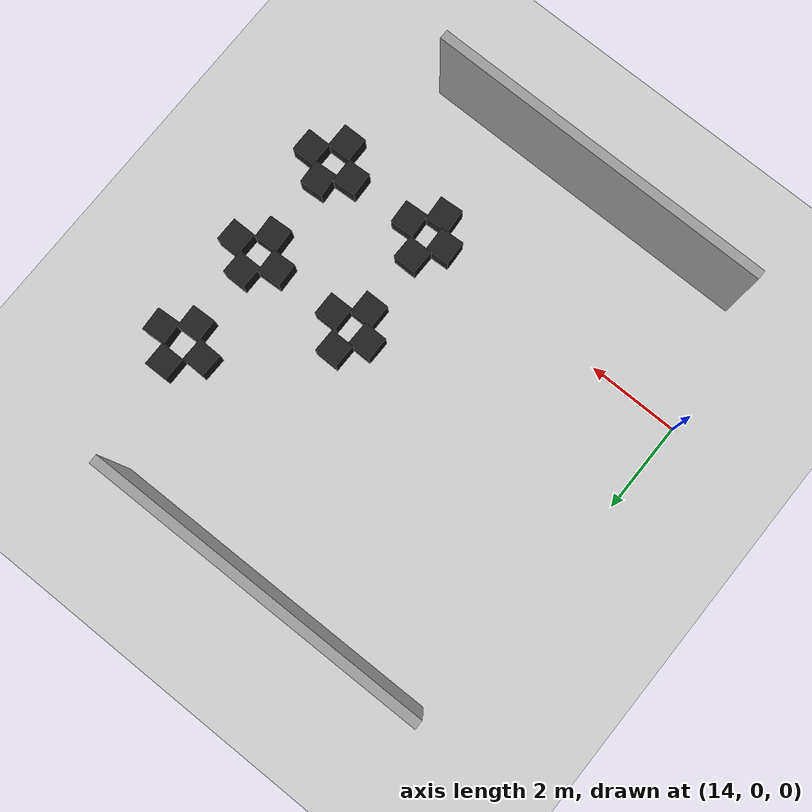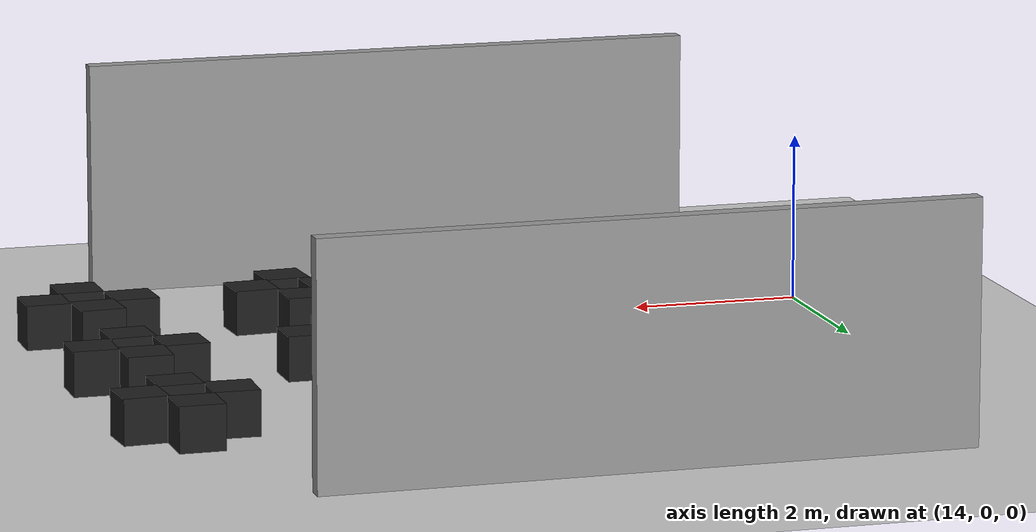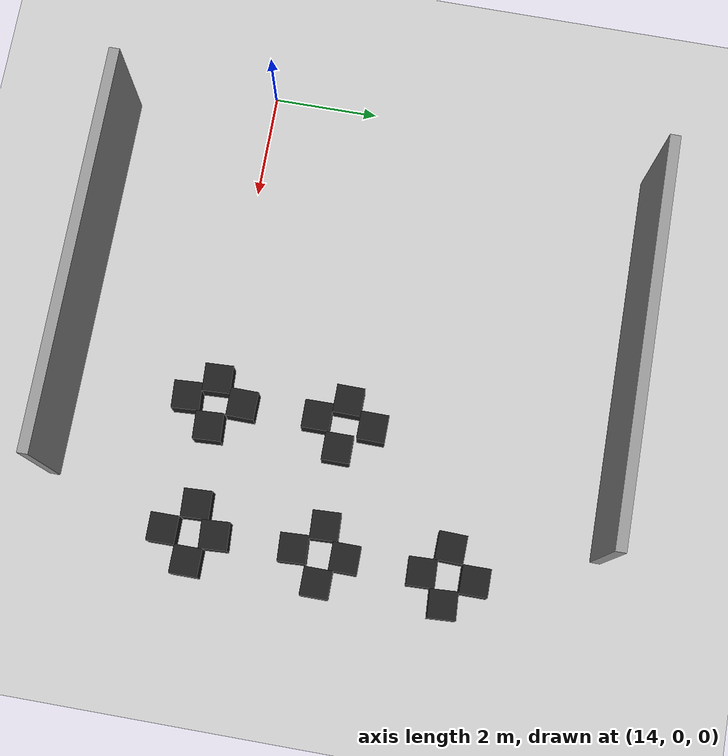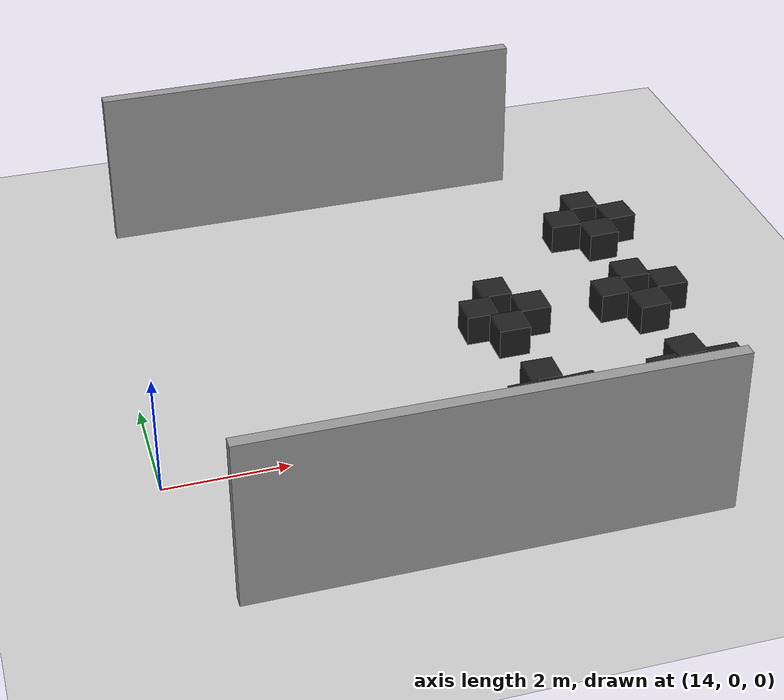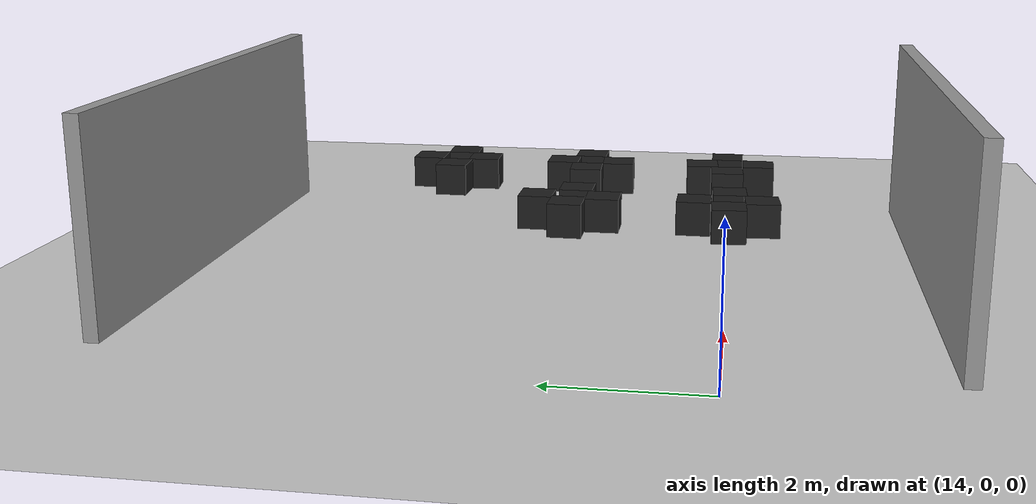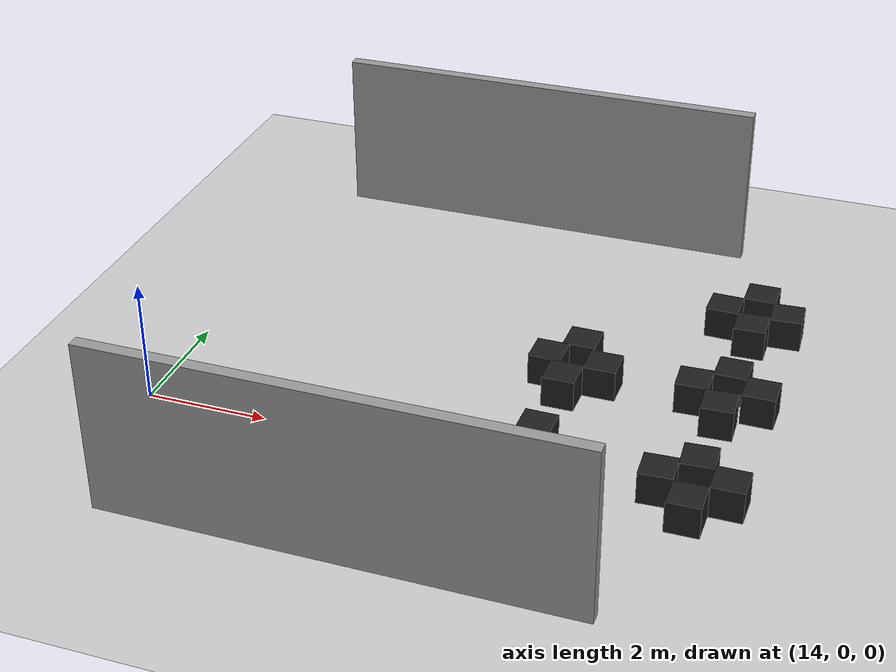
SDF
<sdf version="1.6">
 <world name="default">
  <model name="grey_wall">
   <static>1</static>
   <link name="link">
    <pose>0 0 1.4 0 -0 0</pose>
    <collision name="collision"><geometry><box><size>7.5 0.2 2.8</size></box></geometry></collision>
    <visual name="visual">
     <cast_shadows>0</cast_shadows>
     <geometry><box><size>7.5 0.2 2.8</size></box></geometry>
     <material>
      <script>
       <uri>model://grey_wall/materials/scripts</uri>
       <uri>model://grey_wall/materials/textures</uri>
       <name>vrc/grey_wall</name>
      </script>
     </material>
    </visual>
   </link>
   <pose>18.2315 7.51175 0 0 -0 0.005635</pose>
  </model>
  <model name="grey_wall_clone">
   <static>1</static>
   <link name="link">
    <pose>0 0 1.4 0 -0 0</pose>
    <collision name="collision"><geometry><box><size>7.5 0.2 2.8</size></box></geometry></collision>
    <visual name="visual">
     <cast_shadows>0</cast_shadows>
     <geometry><box><size>7.5 0.2 2.8</size></box></geometry>
     <material>
      <script>
       <uri>model://grey_wall/materials/scripts</uri>
       <uri>model://grey_wall/materials/textures</uri>
       <name>vrc/grey_wall</name>
      </script>
     </material>
    </visual>
   </link>
   <pose>18.3523 -2.72946 0 0 -0 0</pose>
  </model>
  <model name="unit_box_0_clone_13">
   <link name="link">
    <inertial>
     <mass>1</mass>
     <inertia>
      <ixx>0.166667</ixx>
      <ixy>0</ixy>
      <ixz>0</ixz>
      <iyy>0.166667</iyy>
      <iyz>0</iyz>
      <izz>0.166667</izz>
     </inertia>
    </inertial>
    <visual name="visual">
     <geometry><box><size>0.530101 0.530101 0.530101</size></box></geometry>
     <material>
      <script><name>Gazebo/FlatBlack</name><uri>file://media/materials/scripts/gazebo.material</uri></script>
      <shader type="pixel"><normal_map>__default__</normal_map></shader>
      <ambient>0.1 0.1 0.1 1</ambient>
      <diffuse>0.1 0.1 0.1 1</diffuse>
      <specular>0.01 0.01 0.01 1</specular>
      <emissive>0 0 0 1</emissive>
     </material>
    </visual>
    <collision name="collision">
     <geometry><box><size>0.530101 0.530101 0.530101</size></box></geometry>
     <surface>
      <friction>
       <ode><mu>1</mu><mu2>1</mu2><fdir1>0 0 0</fdir1><slip1>0</slip1><slip2>0</slip2></ode>
       <torsional>
        <coefficient>1</coefficient>
        <patch_radius>0</patch_radius>
        <surface_radius>0</surface_radius>
        <use_patch_radius>1</use_patch_radius>
        <ode><slip>0</slip></ode>
       </torsional>
      </friction>
      <bounce><restitution_coefficient>0</restitution_coefficient><threshold>1e+06</threshold></bounce>
      <contact>
       <collide_without_contact>0</collide_without_contact>
       <collide_without_contact_bitmask>1</collide_without_contact_bitmask>
       <collide_bitmask>1</collide_bitmask>
       <ode>
        <soft_cfm>0</soft_cfm>
        <soft_erp>0.2</soft_erp>
        <kp>1e+13</kp>
        <kd>1</kd>
        <max_vel>0.01</max_vel>
        <min_depth>0</min_depth>
       </ode>
       <bullet>
        <split_impulse>1</split_impulse>
        <split_impulse_penetration_threshold>-0.01</split_impulse_penetration_threshold>
        <soft_cfm>0</soft_cfm>
        <soft_erp>0.2</soft_erp>
        <kp>1e+13</kp>
        <kd>1</kd>
       </bullet>
      </contact>
     </surface>
    </collision>
   </link>
   <static>0</static>
   <pose>22.2071 4.82879 0.314108 9e-06 9e-06 -0.022856</pose>
  </model>
  <model name="unit_box_0_clone_22_clone_14">
   <link name="link">
    <inertial>
     <mass>1</mass>
     <inertia>
      <ixx>0.166667</ixx>
      <ixy>0</ixy>
      <ixz>0</ixz>
      <iyy>0.166667</iyy>
      <iyz>0</iyz>
      <izz>0.166667</izz>
     </inertia>
    </inertial>
    <visual name="visual">
     <geometry><box><size>0.530101 0.530101 0.530101</size></box></geometry>
     <material>
      <script><name>Gazebo/FlatBlack</name><uri>file://media/materials/scripts/gazebo.material</uri></script>
      <shader type="pixel"><normal_map>__default__</normal_map></shader>
      <ambient>0.1 0.1 0.1 1</ambient>
      <diffuse>0.1 0.1 0.1 1</diffuse>
      <specular>0.01 0.01 0.01 1</specular>
      <emissive>0 0 0 1</emissive>
     </material>
    </visual>
    <collision name="collision">
     <geometry><box><size>0.530101 0.530101 0.530101</size></box></geometry>
     <surface>
      <friction>
       <ode><mu>1</mu><mu2>1</mu2><fdir1>0 0 0</fdir1><slip1>0</slip1><slip2>0</slip2></ode>
       <torsional>
        <coefficient>1</coefficient>
        <patch_radius>0</patch_radius>
        <surface_radius>0</surface_radius>
        <use_patch_radius>1</use_patch_radius>
        <ode><slip>0</slip></ode>
       </torsional>
      </friction>
      <bounce><restitution_coefficient>0</restitution_coefficient><threshold>1e+06</threshold></bounce>
      <contact>
       <collide_without_contact>0</collide_without_contact>
       <collide_without_contact_bitmask>1</collide_without_contact_bitmask>
       <collide_bitmask>1</collide_bitmask>
       <ode>
        <soft_cfm>0</soft_cfm>
        <soft_erp>0.2</soft_erp>
        <kp>1e+13</kp>
        <kd>1</kd>
        <max_vel>0.01</max_vel>
        <min_depth>0</min_depth>
       </ode>
       <bullet>
        <split_impulse>1</split_impulse>
        <split_impulse_penetration_threshold>-0.01</split_impulse_penetration_threshold>
        <soft_cfm>0</soft_cfm>
        <soft_erp>0.2</soft_erp>
        <kp>1e+13</kp>
        <kd>1</kd>
       </bullet>
      </contact>
     </surface>
    </collision>
   </link>
   <static>0</static>
   <pose>22.7347 5.35425 0.314107 -8e-06 -8e-06 0.004781</pose>
  </model>
  <model name="unit_box_0_clone_22_clone_23">
   <link name="link">
    <inertial>
     <mass>1</mass>
     <inertia>
      <ixx>0.166667</ixx>
      <ixy>0</ixy>
      <ixz>0</ixz>
      <iyy>0.166667</iyy>
      <iyz>0</iyz>
      <izz>0.166667</izz>
     </inertia>
    </inertial>
    <visual name="visual">
     <geometry><box><size>0.530101 0.530101 0.530101</size></box></geometry>
     <material>
      <script><name>Gazebo/FlatBlack</name><uri>file://media/materials/scripts/gazebo.material</uri></script>
      <shader type="pixel"><normal_map>__default__</normal_map></shader>
      <ambient>0.1 0.1 0.1 1</ambient>
      <diffuse>0.1 0.1 0.1 1</diffuse>
      <specular>0.01 0.01 0.01 1</specular>
      <emissive>0 0 0 1</emissive>
     </material>
    </visual>
    <collision name="collision">
     <geometry><box><size>0.530101 0.530101 0.530101</size></box></geometry>
     <surface>
      <friction>
       <ode><mu>1</mu><mu2>1</mu2><fdir1>0 0 0</fdir1><slip1>0</slip1><slip2>0</slip2></ode>
       <torsional>
        <coefficient>1</coefficient>
        <patch_radius>0</patch_radius>
        <surface_radius>0</surface_radius>
        <use_patch_radius>1</use_patch_radius>
        <ode><slip>0</slip></ode>
       </torsional>
      </friction>
      <bounce><restitution_coefficient>0</restitution_coefficient><threshold>1e+06</threshold></bounce>
      <contact>
       <collide_without_contact>0</collide_without_contact>
       <collide_without_contact_bitmask>1</collide_without_contact_bitmask>
       <collide_bitmask>1</collide_bitmask>
       <ode>
        <soft_cfm>0</soft_cfm>
        <soft_erp>0.2</soft_erp>
        <kp>1e+13</kp>
        <kd>1</kd>
        <max_vel>0.01</max_vel>
        <min_depth>0</min_depth>
       </ode>
       <bullet>
        <split_impulse>1</split_impulse>
        <split_impulse_penetration_threshold>-0.01</split_impulse_penetration_threshold>
        <soft_cfm>0</soft_cfm>
        <soft_erp>0.2</soft_erp>
        <kp>1e+13</kp>
        <kd>1</kd>
       </bullet>
      </contact>
     </surface>
    </collision>
   </link>
   <static>0</static>
   <pose>22.7419 4.37024 0.314108 9e-06 8e-06 0.035627</pose>
  </model>
  <model name="unit_box_0_clone_22_clone_24">
   <link name="link">
    <inertial>
     <mass>1</mass>
     <inertia>
      <ixx>0.166667</ixx>
      <ixy>0</ixy>
      <ixz>0</ixz>
      <iyy>0.166667</iyy>
      <iyz>0</iyz>
      <izz>0.166667</izz>
     </inertia>
    </inertial>
    <visual name="visual">
     <geometry><box><size>0.530101 0.530101 0.530101</size></box></geometry>
     <material>
      <script><name>Gazebo/FlatBlack</name><uri>file://media/materials/scripts/gazebo.material</uri></script>
      <shader type="pixel"><normal_map>__default__</normal_map></shader>
      <ambient>0.1 0.1 0.1 1</ambient>
      <diffuse>0.1 0.1 0.1 1</diffuse>
      <specular>0.01 0.01 0.01 1</specular>
      <emissive>0 0 0 1</emissive>
     </material>
    </visual>
    <collision name="collision">
     <geometry><box><size>0.530101 0.530101 0.530101</size></box></geometry>
     <surface>
      <friction>
       <ode><mu>1</mu><mu2>1</mu2><fdir1>0 0 0</fdir1><slip1>0</slip1><slip2>0</slip2></ode>
       <torsional>
        <coefficient>1</coefficient>
        <patch_radius>0</patch_radius>
        <surface_radius>0</surface_radius>
        <use_patch_radius>1</use_patch_radius>
        <ode><slip>0</slip></ode>
       </torsional>
      </friction>
      <bounce><restitution_coefficient>0</restitution_coefficient><threshold>1e+06</threshold></bounce>
      <contact>
       <collide_without_contact>0</collide_without_contact>
       <collide_without_contact_bitmask>1</collide_without_contact_bitmask>
       <collide_bitmask>1</collide_bitmask>
       <ode>
        <soft_cfm>0</soft_cfm>
        <soft_erp>0.2</soft_erp>
        <kp>1e+13</kp>
        <kd>1</kd>
        <max_vel>0.01</max_vel>
        <min_depth>0</min_depth>
       </ode>
       <bullet>
        <split_impulse>1</split_impulse>
        <split_impulse_penetration_threshold>-0.01</split_impulse_penetration_threshold>
        <soft_cfm>0</soft_cfm>
        <soft_erp>0.2</soft_erp>
        <kp>1e+13</kp>
        <kd>1</kd>
       </bullet>
      </contact>
     </surface>
    </collision>
   </link>
   <static>0</static>
   <pose>23.2512 4.83992 0.314108 -7e-06 -8e-06 0.059855</pose>
  </model>
  <model name="unit_box_0_clone_10">
   <link name="link">
    <inertial>
     <mass>1</mass>
     <inertia>
      <ixx>0.166667</ixx>
      <ixy>0</ixy>
      <ixz>0</ixz>
      <iyy>0.166667</iyy>
      <iyz>0</iyz>
      <izz>0.166667</izz>
     </inertia>
    </inertial>
    <visual name="visual">
     <geometry><box><size>0.530101 0.530101 0.530101</size></box></geometry>
     <material>
      <script><name>Gazebo/FlatBlack</name><uri>file://media/materials/scripts/gazebo.material</uri></script>
      <shader type="pixel"><normal_map>__default__</normal_map></shader>
      <ambient>0.1 0.1 0.1 1</ambient>
      <diffuse>0.1 0.1 0.1 1</diffuse>
      <specular>0.01 0.01 0.01 1</specular>
      <emissive>0 0 0 1</emissive>
     </material>
    </visual>
    <collision name="collision">
     <geometry><box><size>0.530101 0.530101 0.530101</size></box></geometry>
     <surface>
      <friction>
       <ode><mu>1</mu><mu2>1</mu2><fdir1>0 0 0</fdir1><slip1>0</slip1><slip2>0</slip2></ode>
       <torsional>
        <coefficient>1</coefficient>
        <patch_radius>0</patch_radius>
        <surface_radius>0</surface_radius>
        <use_patch_radius>1</use_patch_radius>
        <ode><slip>0</slip></ode>
       </torsional>
      </friction>
      <bounce><restitution_coefficient>0</restitution_coefficient><threshold>1e+06</threshold></bounce>
      <contact>
       <collide_without_contact>0</collide_without_contact>
       <collide_without_contact_bitmask>1</collide_without_contact_bitmask>
       <collide_bitmask>1</collide_bitmask>
       <ode>
        <soft_cfm>0</soft_cfm>
        <soft_erp>0.2</soft_erp>
        <kp>1e+13</kp>
        <kd>1</kd>
        <max_vel>0.01</max_vel>
        <min_depth>0</min_depth>
       </ode>
       <bullet>
        <split_impulse>1</split_impulse>
        <split_impulse_penetration_threshold>-0.01</split_impulse_penetration_threshold>
        <soft_cfm>0</soft_cfm>
        <soft_erp>0.2</soft_erp>
        <kp>1e+13</kp>
        <kd>1</kd>
       </bullet>
      </contact>
     </surface>
    </collision>
   </link>
   <static>0</static>
   <pose>20.2244 1.97189 0.314109 9e-06 6e-06 0.004585</pose>
  </model>
  <model name="unit_box_0_clone_22_clone_4">
   <link name="link">
    <inertial>
     <mass>1</mass>
     <inertia>
      <ixx>0.166667</ixx>
      <ixy>0</ixy>
      <ixz>0</ixz>
      <iyy>0.166667</iyy>
      <iyz>0</iyz>
      <izz>0.166667</izz>
     </inertia>
    </inertial>
    <visual name="visual">
     <geometry><box><size>0.530101 0.530101 0.530101</size></box></geometry>
     <material>
      <script><name>Gazebo/FlatBlack</name><uri>file://media/materials/scripts/gazebo.material</uri></script>
      <shader type="pixel"><normal_map>__default__</normal_map></shader>
      <ambient>0.1 0.1 0.1 1</ambient>
      <diffuse>0.1 0.1 0.1 1</diffuse>
      <specular>0.01 0.01 0.01 1</specular>
      <emissive>0 0 0 1</emissive>
     </material>
    </visual>
    <collision name="collision">
     <geometry><box><size>0.530101 0.530101 0.530101</size></box></geometry>
     <surface>
      <friction>
       <ode><mu>1</mu><mu2>1</mu2><fdir1>0 0 0</fdir1><slip1>0</slip1><slip2>0</slip2></ode>
       <torsional>
        <coefficient>1</coefficient>
        <patch_radius>0</patch_radius>
        <surface_radius>0</surface_radius>
        <use_patch_radius>1</use_patch_radius>
        <ode><slip>0</slip></ode>
       </torsional>
      </friction>
      <bounce><restitution_coefficient>0</restitution_coefficient><threshold>1e+06</threshold></bounce>
      <contact>
       <collide_without_contact>0</collide_without_contact>
       <collide_without_contact_bitmask>1</collide_without_contact_bitmask>
       <collide_bitmask>1</collide_bitmask>
       <ode>
        <soft_cfm>0</soft_cfm>
        <soft_erp>0.2</soft_erp>
        <kp>1e+13</kp>
        <kd>1</kd>
        <max_vel>0.01</max_vel>
        <min_depth>0</min_depth>
       </ode>
       <bullet>
        <split_impulse>1</split_impulse>
        <split_impulse_penetration_threshold>-0.01</split_impulse_penetration_threshold>
        <soft_cfm>0</soft_cfm>
        <soft_erp>0.2</soft_erp>
        <kp>1e+13</kp>
        <kd>1</kd>
       </bullet>
      </contact>
     </surface>
    </collision>
   </link>
   <static>0</static>
   <pose>19.8425 2.50381 0.314111 -1e-05 4e-06 -0.008553</pose>
  </model>
  <model name="unit_box_0_clone_28">
   <link name="link">
    <inertial>
     <mass>1</mass>
     <inertia>
      <ixx>0.166667</ixx>
      <ixy>0</ixy>
      <ixz>0</ixz>
      <iyy>0.166667</iyy>
      <iyz>0</iyz>
      <izz>0.166667</izz>
     </inertia>
    </inertial>
    <visual name="visual">
     <geometry><box><size>0.530101 0.530101 0.530101</size></box></geometry>
     <material>
      <script><name>Gazebo/FlatBlack</name><uri>file://media/materials/scripts/gazebo.material</uri></script>
      <shader type="pixel"><normal_map>__default__</normal_map></shader>
      <ambient>0.1 0.1 0.1 1</ambient>
      <diffuse>0.1 0.1 0.1 1</diffuse>
      <specular>0.01 0.01 0.01 1</specular>
      <emissive>0 0 0 1</emissive>
     </material>
    </visual>
    <collision name="collision">
     <geometry><box><size>0.530101 0.530101 0.530101</size></box></geometry>
     <surface>
      <friction>
       <ode><mu>1</mu><mu2>1</mu2><fdir1>0 0 0</fdir1><slip1>0</slip1><slip2>0</slip2></ode>
       <torsional>
        <coefficient>1</coefficient>
        <patch_radius>0</patch_radius>
        <surface_radius>0</surface_radius>
        <use_patch_radius>1</use_patch_radius>
        <ode><slip>0</slip></ode>
       </torsional>
      </friction>
      <bounce><restitution_coefficient>0</restitution_coefficient><threshold>1e+06</threshold></bounce>
      <contact>
       <collide_without_contact>0</collide_without_contact>
       <collide_without_contact_bitmask>1</collide_without_contact_bitmask>
       <collide_bitmask>1</collide_bitmask>
       <ode>
        <soft_cfm>0</soft_cfm>
        <soft_erp>0.2</soft_erp>
        <kp>1e+13</kp>
        <kd>1</kd>
        <max_vel>0.01</max_vel>
        <min_depth>0</min_depth>
       </ode>
       <bullet>
        <split_impulse>1</split_impulse>
        <split_impulse_penetration_threshold>-0.01</split_impulse_penetration_threshold>
        <soft_cfm>0</soft_cfm>
        <soft_erp>0.2</soft_erp>
        <kp>1e+13</kp>
        <kd>1</kd>
       </bullet>
      </contact>
     </surface>
    </collision>
   </link>
   <static>0</static>
   <pose>20.2645 3.03053 0.314109 -9e-06 6e-06 -0.008598</pose>
  </model>
  <model name="unit_box_0_clone_22_clone_15_clone_6">
   <link name="link">
    <inertial>
     <mass>1</mass>
     <inertia>
      <ixx>0.166667</ixx>
      <ixy>0</ixy>
      <ixz>0</ixz>
      <iyy>0.166667</iyy>
      <iyz>0</iyz>
      <izz>0.166667</izz>
     </inertia>
    </inertial>
    <visual name="visual">
     <geometry><box><size>0.530101 0.530101 0.530101</size></box></geometry>
     <material>
      <script><name>Gazebo/FlatBlack</name><uri>file://media/materials/scripts/gazebo.material</uri></script>
      <shader type="pixel"><normal_map>__default__</normal_map></shader>
      <ambient>0.1 0.1 0.1 1</ambient>
      <diffuse>0.1 0.1 0.1 1</diffuse>
      <specular>0.01 0.01 0.01 1</specular>
      <emissive>0 0 0 1</emissive>
     </material>
    </visual>
    <collision name="collision">
     <geometry><box><size>0.530101 0.530101 0.530101</size></box></geometry>
     <surface>
      <friction>
       <ode><mu>1</mu><mu2>1</mu2><fdir1>0 0 0</fdir1><slip1>0</slip1><slip2>0</slip2></ode>
       <torsional>
        <coefficient>1</coefficient>
        <patch_radius>0</patch_radius>
        <surface_radius>0</surface_radius>
        <use_patch_radius>1</use_patch_radius>
        <ode><slip>0</slip></ode>
       </torsional>
      </friction>
      <bounce><restitution_coefficient>0</restitution_coefficient><threshold>1e+06</threshold></bounce>
      <contact>
       <collide_without_contact>0</collide_without_contact>
       <collide_without_contact_bitmask>1</collide_without_contact_bitmask>
       <collide_bitmask>1</collide_bitmask>
       <ode>
        <soft_cfm>0</soft_cfm>
        <soft_erp>0.2</soft_erp>
        <kp>1e+13</kp>
        <kd>1</kd>
        <max_vel>0.01</max_vel>
        <min_depth>0</min_depth>
       </ode>
       <bullet>
        <split_impulse>1</split_impulse>
        <split_impulse_penetration_threshold>-0.01</split_impulse_penetration_threshold>
        <soft_cfm>0</soft_cfm>
        <soft_erp>0.2</soft_erp>
        <kp>1e+13</kp>
        <kd>1</kd>
       </bullet>
      </contact>
     </surface>
    </collision>
   </link>
   <static>0</static>
   <pose>20.7581 2.44891 0.314108 -7e-06 -8e-06 0.004928</pose>
  </model>
  <model name="unit_box_0_clone_22_clone_15_clone_7">
   <link name="link">
    <inertial>
     <mass>1</mass>
     <inertia>
      <ixx>0.166667</ixx>
      <ixy>0</ixy>
      <ixz>0</ixz>
      <iyy>0.166667</iyy>
      <iyz>0</iyz>
      <izz>0.166667</izz>
     </inertia>
    </inertial>
    <visual name="visual">
     <geometry><box><size>0.530101 0.530101 0.530101</size></box></geometry>
     <material>
      <script><name>Gazebo/FlatBlack</name><uri>file://media/materials/scripts/gazebo.material</uri></script>
      <shader type="pixel"><normal_map>__default__</normal_map></shader>
      <ambient>0.1 0.1 0.1 1</ambient>
      <diffuse>0.1 0.1 0.1 1</diffuse>
      <specular>0.01 0.01 0.01 1</specular>
      <emissive>0 0 0 1</emissive>
     </material>
    </visual>
    <collision name="collision">
     <geometry><box><size>0.530101 0.530101 0.530101</size></box></geometry>
     <surface>
      <friction>
       <ode><mu>1</mu><mu2>1</mu2><fdir1>0 0 0</fdir1><slip1>0</slip1><slip2>0</slip2></ode>
       <torsional>
        <coefficient>1</coefficient>
        <patch_radius>0</patch_radius>
        <surface_radius>0</surface_radius>
        <use_patch_radius>1</use_patch_radius>
        <ode><slip>0</slip></ode>
       </torsional>
      </friction>
      <bounce><restitution_coefficient>0</restitution_coefficient><threshold>1e+06</threshold></bounce>
      <contact>
       <collide_without_contact>0</collide_without_contact>
       <collide_without_contact_bitmask>1</collide_without_contact_bitmask>
       <collide_bitmask>1</collide_bitmask>
       <ode>
        <soft_cfm>0</soft_cfm>
        <soft_erp>0.2</soft_erp>
        <kp>1e+13</kp>
        <kd>1</kd>
        <max_vel>0.01</max_vel>
        <min_depth>0</min_depth>
       </ode>
       <bullet>
        <split_impulse>1</split_impulse>
        <split_impulse_penetration_threshold>-0.01</split_impulse_penetration_threshold>
        <soft_cfm>0</soft_cfm>
        <soft_erp>0.2</soft_erp>
        <kp>1e+13</kp>
        <kd>1</kd>
       </bullet>
      </contact>
     </surface>
    </collision>
   </link>
   <static>0</static>
   <pose>20.775 0.007335 0.314111 -1e-05 4e-06 0.055017</pose>
  </model>
  <model name="unit_box_0_clone_22_clone_15_clone_8">
   <link name="link">
    <inertial>
     <mass>1</mass>
     <inertia>
      <ixx>0.166667</ixx>
      <ixy>0</ixy>
      <ixz>0</ixz>
      <iyy>0.166667</iyy>
      <iyz>0</iyz>
      <izz>0.166667</izz>
     </inertia>
    </inertial>
    <visual name="visual">
     <geometry><box><size>0.530101 0.530101 0.530101</size></box></geometry>
     <material>
      <script><name>Gazebo/FlatBlack</name><uri>file://media/materials/scripts/gazebo.material</uri></script>
      <shader type="pixel"><normal_map>__default__</normal_map></shader>
      <ambient>0.1 0.1 0.1 1</ambient>
      <diffuse>0.1 0.1 0.1 1</diffuse>
      <specular>0.01 0.01 0.01 1</specular>
      <emissive>0 0 0 1</emissive>
     </material>
    </visual>
    <collision name="collision">
     <geometry><box><size>0.530101 0.530101 0.530101</size></box></geometry>
     <surface>
      <friction>
       <ode><mu>1</mu><mu2>1</mu2><fdir1>0 0 0</fdir1><slip1>0</slip1><slip2>0</slip2></ode>
       <torsional>
        <coefficient>1</coefficient>
        <patch_radius>0</patch_radius>
        <surface_radius>0</surface_radius>
        <use_patch_radius>1</use_patch_radius>
        <ode><slip>0</slip></ode>
       </torsional>
      </friction>
      <bounce><restitution_coefficient>0</restitution_coefficient><threshold>1e+06</threshold></bounce>
      <contact>
       <collide_without_contact>0</collide_without_contact>
       <collide_without_contact_bitmask>1</collide_without_contact_bitmask>
       <collide_bitmask>1</collide_bitmask>
       <ode>
        <soft_cfm>0</soft_cfm>
        <soft_erp>0.2</soft_erp>
        <kp>1e+13</kp>
        <kd>1</kd>
        <max_vel>0.01</max_vel>
        <min_depth>0</min_depth>
       </ode>
       <bullet>
        <split_impulse>1</split_impulse>
        <split_impulse_penetration_threshold>-0.01</split_impulse_penetration_threshold>
        <soft_cfm>0</soft_cfm>
        <soft_erp>0.2</soft_erp>
        <kp>1e+13</kp>
        <kd>1</kd>
       </bullet>
      </contact>
     </surface>
    </collision>
   </link>
   <static>0</static>
   <pose>20.2552 0.550912 0.314111 -1e-05 4e-06 -0.008182</pose>
  </model>
  <model name="unit_box_0_clone_22_clone_15_clone_9">
   <link name="link">
    <inertial>
     <mass>1</mass>
     <inertia>
      <ixx>0.166667</ixx>
      <ixy>0</ixy>
      <ixz>0</ixz>
      <iyy>0.166667</iyy>
      <iyz>0</iyz>
      <izz>0.166667</izz>
     </inertia>
    </inertial>
    <visual name="visual">
     <geometry><box><size>0.530101 0.530101 0.530101</size></box></geometry>
     <material>
      <script><name>Gazebo/FlatBlack</name><uri>file://media/materials/scripts/gazebo.material</uri></script>
      <shader type="pixel"><normal_map>__default__</normal_map></shader>
      <ambient>0.1 0.1 0.1 1</ambient>
      <diffuse>0.1 0.1 0.1 1</diffuse>
      <specular>0.01 0.01 0.01 1</specular>
      <emissive>0 0 0 1</emissive>
     </material>
    </visual>
    <collision name="collision">
     <geometry><box><size>0.530101 0.530101 0.530101</size></box></geometry>
     <surface>
      <friction>
       <ode><mu>1</mu><mu2>1</mu2><fdir1>0 0 0</fdir1><slip1>0</slip1><slip2>0</slip2></ode>
       <torsional>
        <coefficient>1</coefficient>
        <patch_radius>0</patch_radius>
        <surface_radius>0</surface_radius>
        <use_patch_radius>1</use_patch_radius>
        <ode><slip>0</slip></ode>
       </torsional>
      </friction>
      <bounce><restitution_coefficient>0</restitution_coefficient><threshold>1e+06</threshold></bounce>
      <contact>
       <collide_without_contact>0</collide_without_contact>
       <collide_without_contact_bitmask>1</collide_without_contact_bitmask>
       <collide_bitmask>1</collide_bitmask>
       <ode>
        <soft_cfm>0</soft_cfm>
        <soft_erp>0.2</soft_erp>
        <kp>1e+13</kp>
        <kd>1</kd>
        <max_vel>0.01</max_vel>
        <min_depth>0</min_depth>
       </ode>
       <bullet>
        <split_impulse>1</split_impulse>
        <split_impulse_penetration_threshold>-0.01</split_impulse_penetration_threshold>
        <soft_cfm>0</soft_cfm>
        <soft_erp>0.2</soft_erp>
        <kp>1e+13</kp>
        <kd>1</kd>
       </bullet>
      </contact>
     </surface>
    </collision>
   </link>
   <static>0</static>
   <pose>19.86 0.00896 0.314107 -9e-06 -8e-06 0.050357</pose>
  </model>
  <model name="unit_box_0_clone_22_clone_15_clone_10">
   <link name="link">
    <inertial>
     <mass>1</mass>
     <inertia>
      <ixx>0.166667</ixx>
      <ixy>0</ixy>
      <ixz>0</ixz>
      <iyy>0.166667</iyy>
      <iyz>0</iyz>
      <izz>0.166667</izz>
     </inertia>
    </inertial>
    <visual name="visual">
     <geometry><box><size>0.530101 0.530101 0.530101</size></box></geometry>
     <material>
      <script><name>Gazebo/FlatBlack</name><uri>file://media/materials/scripts/gazebo.material</uri></script>
      <shader type="pixel"><normal_map>__default__</normal_map></shader>
      <ambient>0.1 0.1 0.1 1</ambient>
      <diffuse>0.1 0.1 0.1 1</diffuse>
      <specular>0.01 0.01 0.01 1</specular>
      <emissive>0 0 0 1</emissive>
     </material>
    </visual>
    <collision name="collision">
     <geometry><box><size>0.530101 0.530101 0.530101</size></box></geometry>
     <surface>
      <friction>
       <ode><mu>1</mu><mu2>1</mu2><fdir1>0 0 0</fdir1><slip1>0</slip1><slip2>0</slip2></ode>
       <torsional>
        <coefficient>1</coefficient>
        <patch_radius>0</patch_radius>
        <surface_radius>0</surface_radius>
        <use_patch_radius>1</use_patch_radius>
        <ode><slip>0</slip></ode>
       </torsional>
      </friction>
      <bounce><restitution_coefficient>0</restitution_coefficient><threshold>1e+06</threshold></bounce>
      <contact>
       <collide_without_contact>0</collide_without_contact>
       <collide_without_contact_bitmask>1</collide_without_contact_bitmask>
       <collide_bitmask>1</collide_bitmask>
       <ode>
        <soft_cfm>0</soft_cfm>
        <soft_erp>0.2</soft_erp>
        <kp>1e+13</kp>
        <kd>1</kd>
        <max_vel>0.01</max_vel>
        <min_depth>0</min_depth>
       </ode>
       <bullet>
        <split_impulse>1</split_impulse>
        <split_impulse_penetration_threshold>-0.01</split_impulse_penetration_threshold>
        <soft_cfm>0</soft_cfm>
        <soft_erp>0.2</soft_erp>
        <kp>1e+13</kp>
        <kd>1</kd>
       </bullet>
      </contact>
     </surface>
    </collision>
   </link>
   <static>0</static>
   <pose>20.2738 -0.499381 0.314111 -1e-05 4e-06 0.063477</pose>
  </model>
  <model name="unit_box_0_clone_22_clone_15_clone_11">
   <link name="link">
    <inertial>
     <mass>1</mass>
     <inertia>
      <ixx>0.166667</ixx>
      <ixy>0</ixy>
      <ixz>0</ixz>
      <iyy>0.166667</iyy>
      <iyz>0</iyz>
      <izz>0.166667</izz>
     </inertia>
    </inertial>
    <visual name="visual">
     <geometry><box><size>0.530101 0.530101 0.530101</size></box></geometry>
     <material>
      <script><name>Gazebo/FlatBlack</name><uri>file://media/materials/scripts/gazebo.material</uri></script>
      <shader type="pixel"><normal_map>__default__</normal_map></shader>
      <ambient>0.1 0.1 0.1 1</ambient>
      <diffuse>0.1 0.1 0.1 1</diffuse>
      <specular>0.01 0.01 0.01 1</specular>
      <emissive>0 0 0 1</emissive>
     </material>
    </visual>
    <collision name="collision">
     <geometry><box><size>0.530101 0.530101 0.530101</size></box></geometry>
     <surface>
      <friction>
       <ode><mu>1</mu><mu2>1</mu2><fdir1>0 0 0</fdir1><slip1>0</slip1><slip2>0</slip2></ode>
       <torsional>
        <coefficient>1</coefficient>
        <patch_radius>0</patch_radius>
        <surface_radius>0</surface_radius>
        <use_patch_radius>1</use_patch_radius>
        <ode><slip>0</slip></ode>
       </torsional>
      </friction>
      <bounce><restitution_coefficient>0</restitution_coefficient><threshold>1e+06</threshold></bounce>
      <contact>
       <collide_without_contact>0</collide_without_contact>
       <collide_without_contact_bitmask>1</collide_without_contact_bitmask>
       <collide_bitmask>1</collide_bitmask>
       <ode>
        <soft_cfm>0</soft_cfm>
        <soft_erp>0.2</soft_erp>
        <kp>1e+13</kp>
        <kd>1</kd>
        <max_vel>0.01</max_vel>
        <min_depth>0</min_depth>
       </ode>
       <bullet>
        <split_impulse>1</split_impulse>
        <split_impulse_penetration_threshold>-0.01</split_impulse_penetration_threshold>
        <soft_cfm>0</soft_cfm>
        <soft_erp>0.2</soft_erp>
        <kp>1e+13</kp>
        <kd>1</kd>
       </bullet>
      </contact>
     </surface>
    </collision>
   </link>
   <static>0</static>
   <pose>23.2679 2.50191 0.314109 -6e-06 9e-06 -0.00348</pose>
  </model>
  <model name="unit_box_0_clone_22_clone_15_clone_12">
   <link name="link">
    <inertial>
     <mass>1</mass>
     <inertia>
      <ixx>0.166667</ixx>
      <ixy>0</ixy>
      <ixz>0</ixz>
      <iyy>0.166667</iyy>
      <iyz>0</iyz>
      <izz>0.166667</izz>
     </inertia>
    </inertial>
    <visual name="visual">
     <geometry><box><size>0.530101 0.530101 0.530101</size></box></geometry>
     <material>
      <script><name>Gazebo/FlatBlack</name><uri>file://media/materials/scripts/gazebo.material</uri></script>
      <shader type="pixel"><normal_map>__default__</normal_map></shader>
      <ambient>0.1 0.1 0.1 1</ambient>
      <diffuse>0.1 0.1 0.1 1</diffuse>
      <specular>0.01 0.01 0.01 1</specular>
      <emissive>0 0 0 1</emissive>
     </material>
    </visual>
    <collision name="collision">
     <geometry><box><size>0.530101 0.530101 0.530101</size></box></geometry>
     <surface>
      <friction>
       <ode><mu>1</mu><mu2>1</mu2><fdir1>0 0 0</fdir1><slip1>0</slip1><slip2>0</slip2></ode>
       <torsional>
        <coefficient>1</coefficient>
        <patch_radius>0</patch_radius>
        <surface_radius>0</surface_radius>
        <use_patch_radius>1</use_patch_radius>
        <ode><slip>0</slip></ode>
       </torsional>
      </friction>
      <bounce><restitution_coefficient>0</restitution_coefficient><threshold>1e+06</threshold></bounce>
      <contact>
       <collide_without_contact>0</collide_without_contact>
       <collide_without_contact_bitmask>1</collide_without_contact_bitmask>
       <collide_bitmask>1</collide_bitmask>
       <ode>
        <soft_cfm>0</soft_cfm>
        <soft_erp>0.2</soft_erp>
        <kp>1e+13</kp>
        <kd>1</kd>
        <max_vel>0.01</max_vel>
        <min_depth>0</min_depth>
       </ode>
       <bullet>
        <split_impulse>1</split_impulse>
        <split_impulse_penetration_threshold>-0.01</split_impulse_penetration_threshold>
        <soft_cfm>0</soft_cfm>
        <soft_erp>0.2</soft_erp>
        <kp>1e+13</kp>
        <kd>1</kd>
       </bullet>
      </contact>
     </surface>
    </collision>
   </link>
   <static>0</static>
   <pose>22.7393 2.94292 0.314109 -6e-06 9e-06 -0.003888</pose>
  </model>
  <model name="unit_box_0_clone_22_clone_15_clone_13">
   <link name="link">
    <inertial>
     <mass>1</mass>
     <inertia>
      <ixx>0.166667</ixx>
      <ixy>0</ixy>
      <ixz>0</ixz>
      <iyy>0.166667</iyy>
      <iyz>0</iyz>
      <izz>0.166667</izz>
     </inertia>
    </inertial>
    <visual name="visual">
     <geometry><box><size>0.530101 0.530101 0.530101</size></box></geometry>
     <material>
      <script><name>Gazebo/FlatBlack</name><uri>file://media/materials/scripts/gazebo.material</uri></script>
      <shader type="pixel"><normal_map>__default__</normal_map></shader>
      <ambient>0.1 0.1 0.1 1</ambient>
      <diffuse>0.1 0.1 0.1 1</diffuse>
      <specular>0.01 0.01 0.01 1</specular>
      <emissive>0 0 0 1</emissive>
     </material>
    </visual>
    <collision name="collision">
     <geometry><box><size>0.530101 0.530101 0.530101</size></box></geometry>
     <surface>
      <friction>
       <ode><mu>1</mu><mu2>1</mu2><fdir1>0 0 0</fdir1><slip1>0</slip1><slip2>0</slip2></ode>
       <torsional>
        <coefficient>1</coefficient>
        <patch_radius>0</patch_radius>
        <surface_radius>0</surface_radius>
        <use_patch_radius>1</use_patch_radius>
        <ode><slip>0</slip></ode>
       </torsional>
      </friction>
      <bounce><restitution_coefficient>0</restitution_coefficient><threshold>1e+06</threshold></bounce>
      <contact>
       <collide_without_contact>0</collide_without_contact>
       <collide_without_contact_bitmask>1</collide_without_contact_bitmask>
       <collide_bitmask>1</collide_bitmask>
       <ode>
        <soft_cfm>0</soft_cfm>
        <soft_erp>0.2</soft_erp>
        <kp>1e+13</kp>
        <kd>1</kd>
        <max_vel>0.01</max_vel>
        <min_depth>0</min_depth>
       </ode>
       <bullet>
        <split_impulse>1</split_impulse>
        <split_impulse_penetration_threshold>-0.01</split_impulse_penetration_threshold>
        <soft_cfm>0</soft_cfm>
        <soft_erp>0.2</soft_erp>
        <kp>1e+13</kp>
        <kd>1</kd>
       </bullet>
      </contact>
     </surface>
    </collision>
   </link>
   <static>0</static>
   <pose>22.7205 1.9781 0.314108 -7e-06 -1e-05 0.052826</pose>
  </model>
  <model name="unit_box_0_clone_22_clone_15_clone_14">
   <link name="link">
    <inertial>
     <mass>1</mass>
     <inertia>
      <ixx>0.166667</ixx>
      <ixy>0</ixy>
      <ixz>0</ixz>
      <iyy>0.166667</iyy>
      <iyz>0</iyz>
      <izz>0.166667</izz>
     </inertia>
    </inertial>
    <visual name="visual">
     <geometry><box><size>0.530101 0.530101 0.530101</size></box></geometry>
     <material>
      <script><name>Gazebo/FlatBlack</name><uri>file://media/materials/scripts/gazebo.material</uri></script>
      <shader type="pixel"><normal_map>__default__</normal_map></shader>
      <ambient>0.1 0.1 0.1 1</ambient>
      <diffuse>0.1 0.1 0.1 1</diffuse>
      <specular>0.01 0.01 0.01 1</specular>
      <emissive>0 0 0 1</emissive>
     </material>
    </visual>
    <collision name="collision">
     <geometry><box><size>0.530101 0.530101 0.530101</size></box></geometry>
     <surface>
      <friction>
       <ode><mu>1</mu><mu2>1</mu2><fdir1>0 0 0</fdir1><slip1>0</slip1><slip2>0</slip2></ode>
       <torsional>
        <coefficient>1</coefficient>
        <patch_radius>0</patch_radius>
        <surface_radius>0</surface_radius>
        <use_patch_radius>1</use_patch_radius>
        <ode><slip>0</slip></ode>
       </torsional>
      </friction>
      <bounce><restitution_coefficient>0</restitution_coefficient><threshold>1e+06</threshold></bounce>
      <contact>
       <collide_without_contact>0</collide_without_contact>
       <collide_without_contact_bitmask>1</collide_without_contact_bitmask>
       <collide_bitmask>1</collide_bitmask>
       <ode>
        <soft_cfm>0</soft_cfm>
        <soft_erp>0.2</soft_erp>
        <kp>1e+13</kp>
        <kd>1</kd>
        <max_vel>0.01</max_vel>
        <min_depth>0</min_depth>
       </ode>
       <bullet>
        <split_impulse>1</split_impulse>
        <split_impulse_penetration_threshold>-0.01</split_impulse_penetration_threshold>
        <soft_cfm>0</soft_cfm>
        <soft_erp>0.2</soft_erp>
        <kp>1e+13</kp>
        <kd>1</kd>
       </bullet>
      </contact>
     </surface>
    </collision>
   </link>
   <static>0</static>
   <pose>22.2166 2.48698 0.314107 -8e-06 -8e-06 0.045437</pose>
  </model>
  <model name="unit_box_0_clone_22_clone_15_clone_15">
   <link name="link">
    <inertial>
     <mass>1</mass>
     <inertia>
      <ixx>0.166667</ixx>
      <ixy>0</ixy>
      <ixz>0</ixz>
      <iyy>0.166667</iyy>
      <iyz>0</iyz>
      <izz>0.166667</izz>
     </inertia>
    </inertial>
    <visual name="visual">
     <geometry><box><size>0.530101 0.530101 0.530101</size></box></geometry>
     <material>
      <script><name>Gazebo/FlatBlack</name><uri>file://media/materials/scripts/gazebo.material</uri></script>
      <shader type="pixel"><normal_map>__default__</normal_map></shader>
      <ambient>0.1 0.1 0.1 1</ambient>
      <diffuse>0.1 0.1 0.1 1</diffuse>
      <specular>0.01 0.01 0.01 1</specular>
      <emissive>0 0 0 1</emissive>
     </material>
    </visual>
    <collision name="collision">
     <geometry><box><size>0.530101 0.530101 0.530101</size></box></geometry>
     <surface>
      <friction>
       <ode><mu>1</mu><mu2>1</mu2><fdir1>0 0 0</fdir1><slip1>0</slip1><slip2>0</slip2></ode>
       <torsional>
        <coefficient>1</coefficient>
        <patch_radius>0</patch_radius>
        <surface_radius>0</surface_radius>
        <use_patch_radius>1</use_patch_radius>
        <ode><slip>0</slip></ode>
       </torsional>
      </friction>
      <bounce><restitution_coefficient>0</restitution_coefficient><threshold>1e+06</threshold></bounce>
      <contact>
       <collide_without_contact>0</collide_without_contact>
       <collide_without_contact_bitmask>1</collide_without_contact_bitmask>
       <collide_bitmask>1</collide_bitmask>
       <ode>
        <soft_cfm>0</soft_cfm>
        <soft_erp>0.2</soft_erp>
        <kp>1e+13</kp>
        <kd>1</kd>
        <max_vel>0.01</max_vel>
        <min_depth>0</min_depth>
       </ode>
       <bullet>
        <split_impulse>1</split_impulse>
        <split_impulse_penetration_threshold>-0.01</split_impulse_penetration_threshold>
        <soft_cfm>0</soft_cfm>
        <soft_erp>0.2</soft_erp>
        <kp>1e+13</kp>
        <kd>1</kd>
       </bullet>
      </contact>
     </surface>
    </collision>
   </link>
   <static>0</static>
   <pose>22.7429 0.51201 0.314108 8e-06 8e-06 0.063971</pose>
  </model>
  <model name="unit_box_0_clone_22_clone_15_clone_16">
   <link name="link">
    <inertial>
     <mass>1</mass>
     <inertia>
      <ixx>0.166667</ixx>
      <ixy>0</ixy>
      <ixz>0</ixz>
      <iyy>0.166667</iyy>
      <iyz>0</iyz>
      <izz>0.166667</izz>
     </inertia>
    </inertial>
    <visual name="visual">
     <geometry><box><size>0.530101 0.530101 0.530101</size></box></geometry>
     <material>
      <script><name>Gazebo/FlatBlack</name><uri>file://media/materials/scripts/gazebo.material</uri></script>
      <shader type="pixel"><normal_map>__default__</normal_map></shader>
      <ambient>0.1 0.1 0.1 1</ambient>
      <diffuse>0.1 0.1 0.1 1</diffuse>
      <specular>0.01 0.01 0.01 1</specular>
      <emissive>0 0 0 1</emissive>
     </material>
    </visual>
    <collision name="collision">
     <geometry><box><size>0.530101 0.530101 0.530101</size></box></geometry>
     <surface>
      <friction>
       <ode><mu>1</mu><mu2>1</mu2><fdir1>0 0 0</fdir1><slip1>0</slip1><slip2>0</slip2></ode>
       <torsional>
        <coefficient>1</coefficient>
        <patch_radius>0</patch_radius>
        <surface_radius>0</surface_radius>
        <use_patch_radius>1</use_patch_radius>
        <ode><slip>0</slip></ode>
       </torsional>
      </friction>
      <bounce><restitution_coefficient>0</restitution_coefficient><threshold>1e+06</threshold></bounce>
      <contact>
       <collide_without_contact>0</collide_without_contact>
       <collide_without_contact_bitmask>1</collide_without_contact_bitmask>
       <collide_bitmask>1</collide_bitmask>
       <ode>
        <soft_cfm>0</soft_cfm>
        <soft_erp>0.2</soft_erp>
        <kp>1e+13</kp>
        <kd>1</kd>
        <max_vel>0.01</max_vel>
        <min_depth>0</min_depth>
       </ode>
       <bullet>
        <split_impulse>1</split_impulse>
        <split_impulse_penetration_threshold>-0.01</split_impulse_penetration_threshold>
        <soft_cfm>0</soft_cfm>
        <soft_erp>0.2</soft_erp>
        <kp>1e+13</kp>
        <kd>1</kd>
       </bullet>
      </contact>
     </surface>
    </collision>
   </link>
   <static>0</static>
   <pose>23.2898 0.086229 0.314111 -1.1e-05 6e-06 0.001513</pose>
  </model>
  <model name="unit_box_0_clone_22_clone_15_clone_17">
   <link name="link">
    <inertial>
     <mass>1</mass>
     <inertia>
      <ixx>0.166667</ixx>
      <ixy>0</ixy>
      <ixz>0</ixz>
      <iyy>0.166667</iyy>
      <iyz>0</iyz>
      <izz>0.166667</izz>
     </inertia>
    </inertial>
    <visual name="visual">
     <geometry><box><size>0.530101 0.530101 0.530101</size></box></geometry>
     <material>
      <script><name>Gazebo/FlatBlack</name><uri>file://media/materials/scripts/gazebo.material</uri></script>
      <shader type="pixel"><normal_map>__default__</normal_map></shader>
      <ambient>0.1 0.1 0.1 1</ambient>
      <diffuse>0.1 0.1 0.1 1</diffuse>
      <specular>0.01 0.01 0.01 1</specular>
      <emissive>0 0 0 1</emissive>
     </material>
    </visual>
    <collision name="collision">
     <geometry><box><size>0.530101 0.530101 0.530101</size></box></geometry>
     <surface>
      <friction>
       <ode><mu>1</mu><mu2>1</mu2><fdir1>0 0 0</fdir1><slip1>0</slip1><slip2>0</slip2></ode>
       <torsional>
        <coefficient>1</coefficient>
        <patch_radius>0</patch_radius>
        <surface_radius>0</surface_radius>
        <use_patch_radius>1</use_patch_radius>
        <ode><slip>0</slip></ode>
       </torsional>
      </friction>
      <bounce><restitution_coefficient>0</restitution_coefficient><threshold>1e+06</threshold></bounce>
      <contact>
       <collide_without_contact>0</collide_without_contact>
       <collide_without_contact_bitmask>1</collide_without_contact_bitmask>
       <collide_bitmask>1</collide_bitmask>
       <ode>
        <soft_cfm>0</soft_cfm>
        <soft_erp>0.2</soft_erp>
        <kp>1e+13</kp>
        <kd>1</kd>
        <max_vel>0.01</max_vel>
        <min_depth>0</min_depth>
       </ode>
       <bullet>
        <split_impulse>1</split_impulse>
        <split_impulse_penetration_threshold>-0.01</split_impulse_penetration_threshold>
        <soft_cfm>0</soft_cfm>
        <soft_erp>0.2</soft_erp>
        <kp>1e+13</kp>
        <kd>1</kd>
       </bullet>
      </contact>
     </surface>
    </collision>
   </link>
   <static>0</static>
   <pose>22.2353 0.076792 0.314108 8e-06 8e-06 0.048062</pose>
  </model>
  <model name="unit_box_0_clone_22_clone_15_clone_18">
   <link name="link">
    <inertial>
     <mass>1</mass>
     <inertia>
      <ixx>0.166667</ixx>
      <ixy>0</ixy>
      <ixz>0</ixz>
      <iyy>0.166667</iyy>
      <iyz>0</iyz>
      <izz>0.166667</izz>
     </inertia>
    </inertial>
    <visual name="visual">
     <geometry><box><size>0.530101 0.530101 0.530101</size></box></geometry>
     <material>
      <script><name>Gazebo/FlatBlack</name><uri>file://media/materials/scripts/gazebo.material</uri></script>
      <shader type="pixel"><normal_map>__default__</normal_map></shader>
      <ambient>0.1 0.1 0.1 1</ambient>
      <diffuse>0.1 0.1 0.1 1</diffuse>
      <specular>0.01 0.01 0.01 1</specular>
      <emissive>0 0 0 1</emissive>
     </material>
    </visual>
    <collision name="collision">
     <geometry><box><size>0.530101 0.530101 0.530101</size></box></geometry>
     <surface>
      <friction>
       <ode><mu>1</mu><mu2>1</mu2><fdir1>0 0 0</fdir1><slip1>0</slip1><slip2>0</slip2></ode>
       <torsional>
        <coefficient>1</coefficient>
        <patch_radius>0</patch_radius>
        <surface_radius>0</surface_radius>
        <use_patch_radius>1</use_patch_radius>
        <ode><slip>0</slip></ode>
       </torsional>
      </friction>
      <bounce><restitution_coefficient>0</restitution_coefficient><threshold>1e+06</threshold></bounce>
      <contact>
       <collide_without_contact>0</collide_without_contact>
       <collide_without_contact_bitmask>1</collide_without_contact_bitmask>
       <collide_bitmask>1</collide_bitmask>
       <ode>
        <soft_cfm>0</soft_cfm>
        <soft_erp>0.2</soft_erp>
        <kp>1e+13</kp>
        <kd>1</kd>
        <max_vel>0.01</max_vel>
        <min_depth>0</min_depth>
       </ode>
       <bullet>
        <split_impulse>1</split_impulse>
        <split_impulse_penetration_threshold>-0.01</split_impulse_penetration_threshold>
        <soft_cfm>0</soft_cfm>
        <soft_erp>0.2</soft_erp>
        <kp>1e+13</kp>
        <kd>1</kd>
       </bullet>
      </contact>
     </surface>
    </collision>
   </link>
   <static>0</static>
   <pose>22.7787 -0.44828 0.314108 1e-05 7e-06 0.005775</pose>
  </model>
  <model name="ground_plane">
   <static>1</static>
   <link name="link">
    <collision name="collision">
     <geometry><plane><normal>0 0 1</normal><size>100 100</size></plane></geometry>
     <surface><friction><ode><mu>100</mu><mu2>50</mu2></ode></friction></surface>
    </collision>
    <visual name="visual">
     <cast_shadows>0</cast_shadows>
     <geometry><plane><normal>0 0 1</normal><size>100 100</size></plane></geometry>
     <material>
      <script><uri>file://media/materials/scripts/gazebo.material</uri><name>Gazebo/Grey</name></script>
     </material>
    </visual>
   </link>
   <pose>0.761598 -6.88477 0 0 -0 0</pose>
  </model>
 </world>
</sdf>
